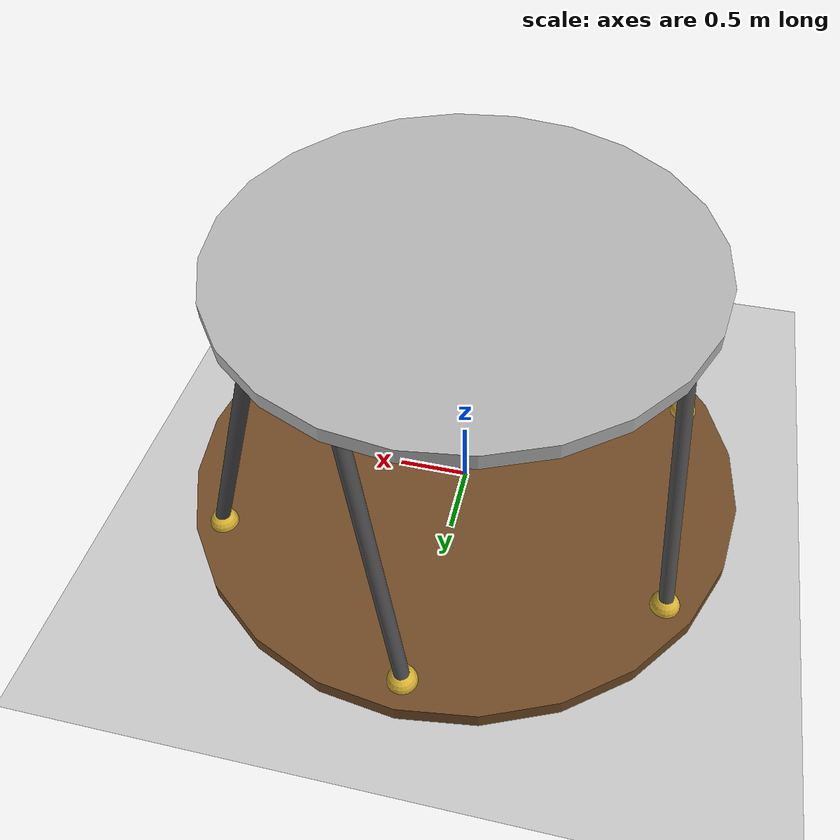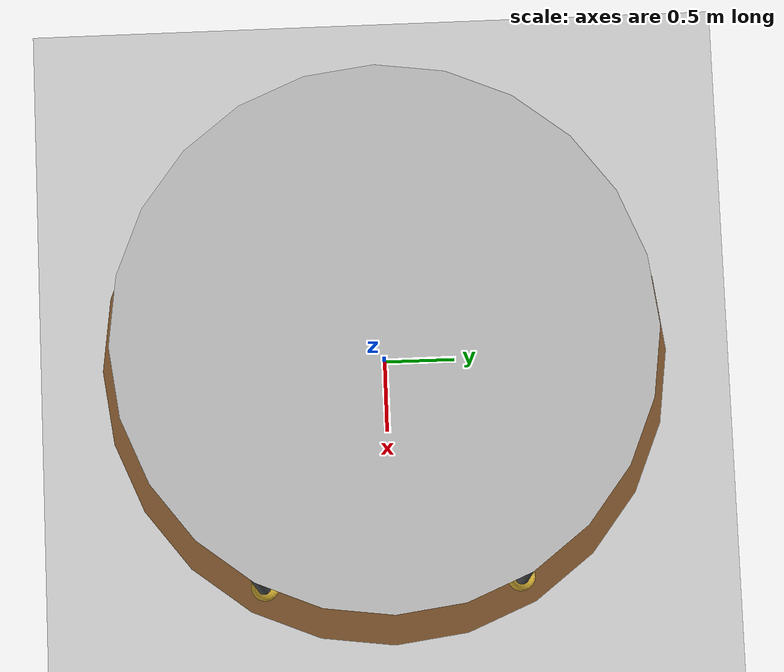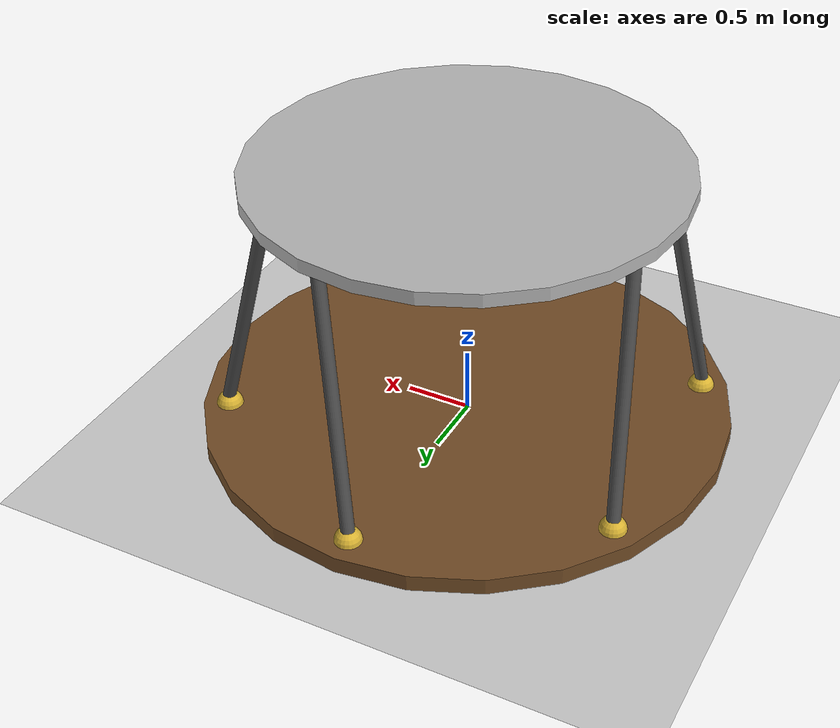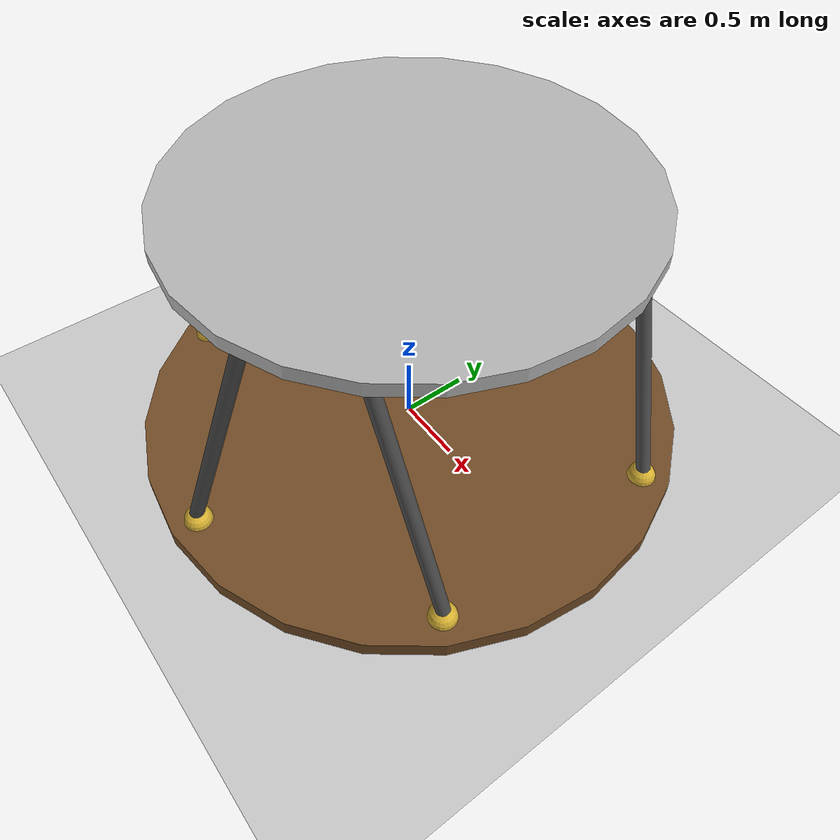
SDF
<?xml version="1.0"?>
<sdf version="1.5">

	<world name="default">

        <!-- System plugins are loaded via gazebo_ros gzserver.launch.py; no world plugins here -->

		<include>
			<uri>model://ground_plane</uri>
		</include>

		<include>
			<uri>model://sun</uri>
		</include>

		<!-- Spawn the Stewart platform directly via world include -->
		<include>
			<uri>model://stewart</uri>
			<name>stewart</name>
			<pose>0 0 0 0 0 0</pose>
		</include>

		<scene>
			<shadows>0</shadows>
		</scene>

	</world>

</sdf>

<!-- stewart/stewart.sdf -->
<sdf version="1.5">
	<model name="stewart">
		<plugin name="joint_controller" filename="libstewart_joint_controller.so">
			<ros>
				<namespace>stewart</namespace>
			</ros>
			<gazebo_controller_init>
				<propor>64.0</propor>
				<integr>35.0</integr>
				<deriv>0.5</deriv>
				<init_legs_length>0.3</init_legs_length>
			</gazebo_controller_init>
		</plugin>
		<joint name="piston1_prismatic_joint" type="prismatic">
			<parent>piston1_cylinder_link</parent>
			<child>piston1_shaft_link</child>
			<pose>0 0 0 0 0 0</pose>
			<axis>
				<xyz>0 0 1</xyz>
				<limit>
					<lower>0.1</lower>
					<upper>1.458798797151677</upper>
					<velocity>1</velocity>
					<effort>500</effort>
				</limit>
				<dynamics>
					<damping>3</damping>
				</dynamics>
			</axis>
		</joint>
		<joint name="piston2_prismatic_joint" type="prismatic">
			<parent>piston2_cylinder_link</parent>
			<child>piston2_shaft_link</child>
			<pose>0 0 0 0 0 0</pose>
			<axis>
				<xyz>0 0 1</xyz>
				<limit>
					<lower>0.1</lower>
					<upper>1.458798797151677</upper>
					<velocity>1</velocity>
					<effort>500</effort>
				</limit>
				<dynamics>
					<damping>3</damping>
				</dynamics>
			</axis>
		</joint>
		<joint name="piston3_prismatic_joint" type="prismatic">
			<parent>piston3_cylinder_link</parent>
			<child>piston3_shaft_link</child>
			<pose>0 0 0 0 0 0</pose>
			<axis>
				<xyz>0 0 1</xyz>
				<limit>
					<lower>0.1</lower>
					<upper>1.458798797151677</upper>
					<velocity>1</velocity>
					<effort>500</effort>
				</limit>
				<dynamics>
					<damping>3</damping>
				</dynamics>
			</axis>
		</joint>
		<joint name="piston4_prismatic_joint" type="prismatic">
			<parent>piston4_cylinder_link</parent>
			<child>piston4_shaft_link</child>
			<pose>0 0 0 0 0 0</pose>
			<axis>
				<xyz>0 0 1</xyz>
				<limit>
					<lower>0.1</lower>
					<upper>1.458798797151677</upper>
					<velocity>1</velocity>
					<effort>500</effort>
				</limit>
				<dynamics>
					<damping>3</damping>
				</dynamics>
			</axis>
		</joint>
		<joint name="piston5_prismatic_joint" type="prismatic">
			<parent>piston5_cylinder_link</parent>
			<child>piston5_shaft_link</child>
			<pose>0 0 0 0 0 0</pose>
			<axis>
				<xyz>0 0 1</xyz>
				<limit>
					<lower>0.1</lower>
					<upper>1.458798797151677</upper>
					<velocity>1</velocity>
					<effort>500</effort>
				</limit>
				<dynamics>
					<damping>3</damping>
				</dynamics>
			</axis>
		</joint>
		<joint name="piston6_prismatic_joint" type="prismatic">
			<parent>piston6_cylinder_link</parent>
			<child>piston6_shaft_link</child>
			<pose>0 0 0 0 0 0</pose>
			<axis>
				<xyz>0 0 1</xyz>
				<limit>
					<lower>0.1</lower>
					<upper>1.458798797151677</upper>
					<velocity>1</velocity>
					<effort>500</effort>
				</limit>
				<dynamics>
					<damping>3</damping>
				</dynamics>
			</axis>
		</joint>
		<joint name="bottom_ball1_joint" type="revolute">
			<parent>base_link</parent>
			<child>bottom_ball1_link</child>
			<pose>0 0 0 0 0 0</pose>
			<axis>
				<xyz>0 1 0</xyz>
				<limit>
					<lower>-0.5235987755982988</lower>
					<upper>0.5235987755982988</upper>
					<velocity>1</velocity>
					<effort/>
				</limit>
				<dynamics>
					<damping/>
				</dynamics>
			</axis>
		</joint>
		<joint name="bottom_ball2_joint" type="revolute">
			<parent>base_link</parent>
			<child>bottom_ball2_link</child>
			<pose>0 0 0 0 0 0</pose>
			<axis>
				<xyz>0 1 0</xyz>
				<limit>
					<lower>-0.5235987755982988</lower>
					<upper>0.5235987755982988</upper>
					<velocity>1</velocity>
					<effort/>
				</limit>
				<dynamics>
					<damping/>
				</dynamics>
			</axis>
		</joint>
		<joint name="bottom_ball3_joint" type="revolute">
			<parent>base_link</parent>
			<child>bottom_ball3_link</child>
			<pose>0 0 0 0 0 0</pose>
			<axis>
				<xyz>0 1 0</xyz>
				<limit>
					<lower>-0.5235987755982988</lower>
					<upper>0.5235987755982988</upper>
					<velocity>1</velocity>
					<effort/>
				</limit>
				<dynamics>
					<damping/>
				</dynamics>
			</axis>
		</joint>
		<joint name="bottom_ball4_joint" type="revolute">
			<parent>base_link</parent>
			<child>bottom_ball4_link</child>
			<pose>0 0 0 0 0 0</pose>
			<axis>
				<xyz>0 1 0</xyz>
				<limit>
					<lower>-0.5235987755982988</lower>
					<upper>0.5235987755982988</upper>
					<velocity>1</velocity>
					<effort/>
				</limit>
				<dynamics>
					<damping/>
				</dynamics>
			</axis>
		</joint>
		<joint name="bottom_ball5_joint" type="revolute">
			<parent>base_link</parent>
			<child>bottom_ball5_link</child>
			<pose>0 0 0 0 0 0</pose>
			<axis>
				<xyz>0 1 0</xyz>
				<limit>
					<lower>-0.5235987755982988</lower>
					<upper>0.5235987755982988</upper>
					<velocity>1</velocity>
					<effort/>
				</limit>
				<dynamics>
					<damping/>
				</dynamics>
			</axis>
		</joint>
		<joint name="bottom_ball6_joint" type="revolute">
			<parent>base_link</parent>
			<child>bottom_ball6_link</child>
			<pose>0 0 0 0 0 0</pose>
			<axis>
				<xyz>0 1 0</xyz>
				<limit>
					<lower>-0.5235987755982988</lower>
					<upper>0.5235987755982988</upper>
					<velocity>1</velocity>
					<effort/>
				</limit>
				<dynamics>
					<damping/>
				</dynamics>
			</axis>
		</joint>
		<joint name="piston1_bottom_pitch_joint" type="revolute2">
			<parent>bottom_ball1_link</parent>
			<child>piston1_cylinder_link</child>
			<pose>0 0 -0.911749248219798 0 0 0</pose>
			<axis>
				<xyz>1 0 0</xyz>
				<limit>
					<lower>-0.5235987755982988</lower>
					<upper>0.5235987755982988</upper>
					<velocity/>
					<effort/>
				</limit>
				<dynamics>
					<damping/>
				</dynamics>
			</axis>
		</joint>
		<joint name="piston2_bottom_pitch_joint" type="revolute2">
			<parent>bottom_ball2_link</parent>
			<child>piston2_cylinder_link</child>
			<pose>0 0 -0.911749248219798 0 0 0</pose>
			<axis>
				<xyz>1 0 0</xyz>
				<limit>
					<lower>-0.5235987755982988</lower>
					<upper>0.5235987755982988</upper>
					<velocity/>
					<effort/>
				</limit>
				<dynamics>
					<damping/>
				</dynamics>
			</axis>
		</joint>
		<joint name="piston3_bottom_pitch_joint" type="revolute2">
			<parent>bottom_ball3_link</parent>
			<child>piston3_cylinder_link</child>
			<pose>0 0 -0.911749248219798 0 0 0</pose>
			<axis>
				<xyz>1 0 0</xyz>
				<limit>
					<lower>-0.5235987755982988</lower>
					<upper>0.5235987755982988</upper>
					<velocity/>
					<effort/>
				</limit>
				<dynamics>
					<damping/>
				</dynamics>
			</axis>
		</joint>
		<joint name="piston4_bottom_pitch_joint" type="revolute2">
			<parent>bottom_ball4_link</parent>
			<child>piston4_cylinder_link</child>
			<pose>0 0 -0.911749248219798 0 0 0</pose>
			<axis>
				<xyz>1 0 0</xyz>
				<limit>
					<lower>-0.5235987755982988</lower>
					<upper>0.5235987755982988</upper>
					<velocity/>
					<effort/>
				</limit>
				<dynamics>
					<damping/>
				</dynamics>
			</axis>
		</joint>
		<joint name="piston5_bottom_pitch_joint" type="revolute2">
			<parent>bottom_ball5_link</parent>
			<child>piston5_cylinder_link</child>
			<pose>0 0 -0.911749248219798 0 0 0</pose>
			<axis>
				<xyz>1 0 0</xyz>
				<limit>
					<lower>-0.5235987755982988</lower>
					<upper>0.5235987755982988</upper>
					<velocity/>
					<effort/>
				</limit>
				<dynamics>
					<damping/>
				</dynamics>
			</axis>
		</joint>
		<joint name="piston6_bottom_pitch_joint" type="revolute2">
			<parent>bottom_ball6_link</parent>
			<child>piston6_cylinder_link</child>
			<pose>0 0 -0.911749248219798 0 0 0</pose>
			<axis>
				<xyz>1 0 0</xyz>
				<limit>
					<lower>-0.5235987755982988</lower>
					<upper>0.5235987755982988</upper>
					<velocity/>
					<effort/>
				</limit>
				<dynamics>
					<damping/>
				</dynamics>
			</axis>
		</joint>
		<joint name="top_ball1_joint" type="revolute">
			<parent>platform_link</parent>
			<child>top_ball1_link</child>
			<pose>0 0 0 0 0 0</pose>
			<axis>
				<xyz>0 1 0</xyz>
				<limit>
					<lower>-0.5235987755982988</lower>
					<upper>0.5235987755982988</upper>
					<velocity>1</velocity>
					<effort/>
				</limit>
				<dynamics>
					<damping/>
				</dynamics>
			</axis>
			<axis2>
				<xyz>0 0 1</xyz>
				<limit>
					<lower>-0.5235987755982988</lower>
					<upper>0.5235987755982988</upper>
					<velocity>1</velocity>
					<effort/>
				</limit>
				<dynamics>
					<damping/>
				</dynamics>
			</axis2>
		</joint>
		<joint name="top_ball2_joint" type="revolute">
			<parent>platform_link</parent>
			<child>top_ball2_link</child>
			<pose>0 0 0 0 0 0</pose>
			<axis>
				<xyz>0 1 0</xyz>
				<limit>
					<lower>-0.5235987755982988</lower>
					<upper>0.5235987755982988</upper>
					<velocity>1</velocity>
					<effort/>
				</limit>
				<dynamics>
					<damping/>
				</dynamics>
			</axis>
			<axis2>
				<xyz>0 0 1</xyz>
				<limit>
					<lower>-0.5235987755982988</lower>
					<upper>0.5235987755982988</upper>
					<velocity>1</velocity>
					<effort/>
				</limit>
				<dynamics>
					<damping/>
				</dynamics>
			</axis2>
		</joint>
		<joint name="top_ball3_joint" type="revolute">
			<parent>platform_link</parent>
			<child>top_ball3_link</child>
			<pose>0 0 0 0 0 0</pose>
			<axis>
				<xyz>0 1 0</xyz>
				<limit>
					<lower>-0.5235987755982988</lower>
					<upper>0.5235987755982988</upper>
					<velocity>1</velocity>
					<effort/>
				</limit>
				<dynamics>
					<damping/>
				</dynamics>
			</axis>
			<axis2>
				<xyz>0 0 1</xyz>
				<limit>
					<lower>-0.5235987755982988</lower>
					<upper>0.5235987755982988</upper>
					<velocity>1</velocity>
					<effort/>
				</limit>
				<dynamics>
					<damping/>
				</dynamics>
			</axis2>
		</joint>
		<joint name="top_ball4_joint" type="revolute">
			<parent>platform_link</parent>
			<child>top_ball4_link</child>
			<pose>0 0 0 0 0 0</pose>
			<axis>
				<xyz>0 1 0</xyz>
				<limit>
					<lower>-0.5235987755982988</lower>
					<upper>0.5235987755982988</upper>
					<velocity>1</velocity>
					<effort/>
				</limit>
				<dynamics>
					<damping/>
				</dynamics>
			</axis>
			<axis2>
				<xyz>0 0 1</xyz>
				<limit>
					<lower>-0.5235987755982988</lower>
					<upper>0.5235987755982988</upper>
					<velocity>1</velocity>
					<effort/>
				</limit>
				<dynamics>
					<damping/>
				</dynamics>
			</axis2>
		</joint>
		<joint name="top_ball5_joint" type="revolute">
			<parent>platform_link</parent>
			<child>top_ball5_link</child>
			<pose>0 0 0 0 0 0</pose>
			<axis>
				<xyz>0 1 0</xyz>
				<limit>
					<lower>-0.5235987755982988</lower>
					<upper>0.5235987755982988</upper>
					<velocity>1</velocity>
					<effort/>
				</limit>
				<dynamics>
					<damping/>
				</dynamics>
			</axis>
			<axis2>
				<xyz>0 0 1</xyz>
				<limit>
					<lower>-0.5235987755982988</lower>
					<upper>0.5235987755982988</upper>
					<velocity>1</velocity>
					<effort/>
				</limit>
				<dynamics>
					<damping/>
				</dynamics>
			</axis2>
		</joint>
		<joint name="top_ball6_joint" type="revolute">
			<parent>platform_link</parent>
			<child>top_ball6_link</child>
			<pose>0 0 0 0 0 0</pose>
			<axis>
				<xyz>0 1 0</xyz>
				<limit>
					<lower>-0.5235987755982988</lower>
					<upper>0.5235987755982988</upper>
					<velocity>1</velocity>
					<effort/>
				</limit>
				<dynamics>
					<damping/>
				</dynamics>
			</axis>
			<axis2>
				<xyz>0 0 1</xyz>
				<limit>
					<lower>-0.5235987755982988</lower>
					<upper>0.5235987755982988</upper>
					<velocity>1</velocity>
					<effort/>
				</limit>
				<dynamics>
					<damping/>
				</dynamics>
			</axis2>
		</joint>
		<joint name="piston1_top_pitch_joint" type="universal">
			<parent>top_ball1_link</parent>
			<child>piston1_shaft_link</child>
			<pose>0 0 0.911749248219798 0 0 0</pose>
			<axis>
				<xyz>1 0 0</xyz>
				<limit>
					<lower>-0.5235987755982988</lower>
					<upper>0.5235987755982988</upper>
					<velocity/>
					<effort/>
				</limit>
				<dynamics>
					<damping/>
				</dynamics>
			</axis>
		</joint>
		<joint name="piston2_top_pitch_joint" type="universal">
			<parent>top_ball2_link</parent>
			<child>piston2_shaft_link</child>
			<pose>0 0 0.911749248219798 0 0 0</pose>
			<axis>
				<xyz>1 0 0</xyz>
				<limit>
					<lower>-0.5235987755982988</lower>
					<upper>0.5235987755982988</upper>
					<velocity/>
					<effort/>
				</limit>
				<dynamics>
					<damping/>
				</dynamics>
			</axis>
		</joint>
		<joint name="piston3_top_pitch_joint" type="universal">
			<parent>top_ball3_link</parent>
			<child>piston3_shaft_link</child>
			<pose>0 0 0.911749248219798 0 0 0</pose>
			<axis>
				<xyz>1 0 0</xyz>
				<limit>
					<lower>-0.5235987755982988</lower>
					<upper>0.5235987755982988</upper>
					<velocity/>
					<effort/>
				</limit>
				<dynamics>
					<damping/>
				</dynamics>
			</axis>
		</joint>
		<joint name="piston4_top_pitch_joint" type="universal">
			<parent>top_ball4_link</parent>
			<child>piston4_shaft_link</child>
			<pose>0 0 0.911749248219798 0 0 0</pose>
			<axis>
				<xyz>1 0 0</xyz>
				<limit>
					<lower>-0.5235987755982988</lower>
					<upper>0.5235987755982988</upper>
					<velocity/>
					<effort/>
				</limit>
				<dynamics>
					<damping/>
				</dynamics>
			</axis>
		</joint>
		<joint name="piston5_top_pitch_joint" type="universal">
			<parent>top_ball5_link</parent>
			<child>piston5_shaft_link</child>
			<pose>0 0 0.911749248219798 0 0 0</pose>
			<axis>
				<xyz>1 0 0</xyz>
				<limit>
					<lower>-0.5235987755982988</lower>
					<upper>0.5235987755982988</upper>
					<velocity/>
					<effort/>
				</limit>
				<dynamics>
					<damping/>
				</dynamics>
			</axis>
		</joint>
		<joint name="piston6_top_pitch_joint" type="universal">
			<parent>top_ball6_link</parent>
			<child>piston6_shaft_link</child>
			<pose>0 0 0.911749248219798 0 0 0</pose>
			<axis>
				<xyz>1 0 0</xyz>
				<limit>
					<lower>-0.5235987755982988</lower>
					<upper>0.5235987755982988</upper>
					<velocity/>
					<effort/>
				</limit>
				<dynamics>
					<damping/>
				</dynamics>
			</axis>
		</joint>
		<link name="base_link">
			<pose>0 0 0.0625 0 0 0</pose>
			<inertial>
				<mass>1000.0</mass>
				<inertia>
					<ixx>1001.3020833333333</ixx>
					<ixy>0</ixy>
					<ixz>0</ixz>
					<iyy>1001.3020833333333</iyy>
					<iyz>0</iyz>
					<izz>2000.0</izz>
				</inertia>
			</inertial>
			<visual name="base_link_visual">
				<geometry>
					<cylinder>
						<radius>2.0</radius>
						<length>0.125</length>
					</cylinder>
				</geometry>
				<material>
					<script>
						<uri>file://media/materials/scripts/gazebo.material</uri>
						<name>Gazebo/Trunk</name>
					</script>
				</material>
			</visual>
			<collision name="base_link_collision">
				<geometry>
					<cylinder>
						<radius>2.0</radius>
						<length>0.125</length>
					</cylinder>
				</geometry>
			</collision>
		</link>
		<link name="platform_link">
			<pose>0 0 2.0625 0 0 0</pose>
			<inertial>
				<mass>10</mass>
				<inertia>
					<ixx>6.408333333333334</ixx>
					<ixy>0</ixy>
					<ixz>0</ixz>
					<iyy>6.408333333333334</iyy>
					<iyz>0</iyz>
					<izz>12.800000000000002</izz>
				</inertia>
			</inertial>
			<visual name="platform_link_visual">
				<geometry>
					<cylinder>
						<radius>1.6</radius>
						<length>0.1</length>
					</cylinder>
				</geometry>
				<material>
					<script>
						<uri>file://media/materials/scripts/gazebo.material</uri>
						<name>Gazebo/Footway</name>
					</script>
				</material>
			</visual>
			<collision name="platform_link_collision">
				<geometry>
					<cylinder>
						<radius>1.6</radius>
						<length>0.1</length>
					</cylinder>
				</geometry>
			</collision>
		</link>
		<link name="bottom_ball1_link">
			<pose>1.5588457268119897 0.8999999999999999 0.125 0 0 0.5235987755982988</pose>
			<inertial>
				<mass>0.01</mass>
				<inertia>
					<ixx>4.000000000000001e-05</ixx>
					<ixy>0</ixy>
					<ixz>0</ixz>
					<iyy>4.000000000000001e-05</iyy>
					<iyz>0</iyz>
					<izz>4.000000000000001e-05</izz>
				</inertia>
			</inertial>
			<visual name="bottom_ball1_link_visual">
				<geometry>
					<sphere>
						<radius>0.1</radius>
					</sphere>
				</geometry>
				<material>
					<script>
						<uri>file://media/materials/scripts/gazebo.material</uri>
						<name>Gazebo/Gold</name>
					</script>
				</material>
			</visual>
			<collision name="bottom_ball1_link_collision">
				<geometry>
					<sphere>
						<radius>0.1</radius>
					</sphere>
				</geometry>
			</collision>
		</link>
		<link name="bottom_ball2_link">
			<pose>1.1021821192326179e-16 1.8 0.125 0 0 1.5707963267948966</pose>
			<inertial>
				<mass>0.01</mass>
				<inertia>
					<ixx>4.000000000000001e-05</ixx>
					<ixy>0</ixy>
					<ixz>0</ixz>
					<iyy>4.000000000000001e-05</iyy>
					<iyz>0</iyz>
					<izz>4.000000000000001e-05</izz>
				</inertia>
			</inertial>
			<visual name="bottom_ball2_link_visual">
				<geometry>
					<sphere>
						<radius>0.1</radius>
					</sphere>
				</geometry>
				<material>
					<script>
						<uri>file://media/materials/scripts/gazebo.material</uri>
						<name>Gazebo/Gold</name>
					</script>
				</material>
			</visual>
			<collision name="bottom_ball2_link_collision">
				<geometry>
					<sphere>
						<radius>0.1</radius>
					</sphere>
				</geometry>
			</collision>
		</link>
		<link name="bottom_ball3_link">
			<pose>-1.5588457268119897 0.8999999999999999 0.125 0 0 2.6179938779914944</pose>
			<inertial>
				<mass>0.01</mass>
				<inertia>
					<ixx>4.000000000000001e-05</ixx>
					<ixy>0</ixy>
					<ixz>0</ixz>
					<iyy>4.000000000000001e-05</iyy>
					<iyz>0</iyz>
					<izz>4.000000000000001e-05</izz>
				</inertia>
			</inertial>
			<visual name="bottom_ball3_link_visual">
				<geometry>
					<sphere>
						<radius>0.1</radius>
					</sphere>
				</geometry>
				<material>
					<script>
						<uri>file://media/materials/scripts/gazebo.material</uri>
						<name>Gazebo/Gold</name>
					</script>
				</material>
			</visual>
			<collision name="bottom_ball3_link_collision">
				<geometry>
					<sphere>
						<radius>0.1</radius>
					</sphere>
				</geometry>
			</collision>
		</link>
		<link name="bottom_ball4_link">
			<pose>-1.5588457268119895 -0.9000000000000002 0.125 0 0 -2.6179938779914944</pose>
			<inertial>
				<mass>0.01</mass>
				<inertia>
					<ixx>4.000000000000001e-05</ixx>
					<ixy>0</ixy>
					<ixz>0</ixz>
					<iyy>4.000000000000001e-05</iyy>
					<iyz>0</iyz>
					<izz>4.000000000000001e-05</izz>
				</inertia>
			</inertial>
			<visual name="bottom_ball4_link_visual">
				<geometry>
					<sphere>
						<radius>0.1</radius>
					</sphere>
				</geometry>
				<material>
					<script>
						<uri>file://media/materials/scripts/gazebo.material</uri>
						<name>Gazebo/Gold</name>
					</script>
				</material>
			</visual>
			<collision name="bottom_ball4_link_collision">
				<geometry>
					<sphere>
						<radius>0.1</radius>
					</sphere>
				</geometry>
			</collision>
		</link>
		<link name="bottom_ball5_link">
			<pose>-3.3065463576978537e-16 -1.8 0.125 0 0 -1.5707963267948968</pose>
			<inertial>
				<mass>0.01</mass>
				<inertia>
					<ixx>4.000000000000001e-05</ixx>
					<ixy>0</ixy>
					<ixz>0</ixz>
					<iyy>4.000000000000001e-05</iyy>
					<iyz>0</iyz>
					<izz>4.000000000000001e-05</izz>
				</inertia>
			</inertial>
			<visual name="bottom_ball5_link_visual">
				<geometry>
					<sphere>
						<radius>0.1</radius>
					</sphere>
				</geometry>
				<material>
					<script>
						<uri>file://media/materials/scripts/gazebo.material</uri>
						<name>Gazebo/Gold</name>
					</script>
				</material>
			</visual>
			<collision name="bottom_ball5_link_collision">
				<geometry>
					<sphere>
						<radius>0.1</radius>
					</sphere>
				</geometry>
			</collision>
		</link>
		<link name="bottom_ball6_link">
			<pose>1.558845726811989 -0.9000000000000008 0.125 0 0 -0.5235987755982994</pose>
			<inertial>
				<mass>0.01</mass>
				<inertia>
					<ixx>4.000000000000001e-05</ixx>
					<ixy>0</ixy>
					<ixz>0</ixz>
					<iyy>4.000000000000001e-05</iyy>
					<iyz>0</iyz>
					<izz>4.000000000000001e-05</izz>
				</inertia>
			</inertial>
			<visual name="bottom_ball6_link_visual">
				<geometry>
					<sphere>
						<radius>0.1</radius>
					</sphere>
				</geometry>
				<material>
					<script>
						<uri>file://media/materials/scripts/gazebo.material</uri>
						<name>Gazebo/Gold</name>
					</script>
				</material>
			</visual>
			<collision name="bottom_ball6_link_collision">
				<geometry>
					<sphere>
						<radius>0.1</radius>
					</sphere>
				</geometry>
			</collision>
		</link>
		<link name="top_ball1_link">
			<pose>1.0182337649086284 1.0182337649086284 1.9625 0 0 0.7853981633974483</pose>
			<inertial>
				<mass>0.01</mass>
				<inertia>
					<ixx>1.0000000000000003e-05</ixx>
					<ixy>0</ixy>
					<ixz>0</ixz>
					<iyy>1.0000000000000003e-05</iyy>
					<iyz>0</iyz>
					<izz>1.0000000000000003e-05</izz>
				</inertia>
			</inertial>
			<visual name="top_ball1_link_visual">
				<geometry>
					<sphere>
						<radius>0.05</radius>
					</sphere>
				</geometry>
				<material>
					<script>
						<uri>file://media/materials/scripts/gazebo.material</uri>
						<name>Gazebo/White</name>
					</script>
				</material>
			</visual>
			<collision name="top_ball1_link_collision">
				<geometry>
					<sphere>
						<radius>0.05</radius>
					</sphere>
				</geometry>
			</collision>
		</link>
		<link name="top_ball2_link">
			<pose>0.3726994249476302 1.3909331898562582 1.9625 0 0 1.308996938995747</pose>
			<inertial>
				<mass>0.01</mass>
				<inertia>
					<ixx>1.0000000000000003e-05</ixx>
					<ixy>0</ixy>
					<ixz>0</ixz>
					<iyy>1.0000000000000003e-05</iyy>
					<iyz>0</iyz>
					<izz>1.0000000000000003e-05</izz>
				</inertia>
			</inertial>
			<visual name="top_ball2_link_visual">
				<geometry>
					<sphere>
						<radius>0.05</radius>
					</sphere>
				</geometry>
				<material>
					<script>
						<uri>file://media/materials/scripts/gazebo.material</uri>
						<name>Gazebo/White</name>
					</script>
				</material>
			</visual>
			<collision name="top_ball2_link_collision">
				<geometry>
					<sphere>
						<radius>0.05</radius>
					</sphere>
				</geometry>
			</collision>
		</link>
		<link name="top_ball3_link">
			<pose>-1.3909331898562582 0.37269942494763025 1.9625 0 0 2.8797932657906435</pose>
			<inertial>
				<mass>0.01</mass>
				<inertia>
					<ixx>1.0000000000000003e-05</ixx>
					<ixy>0</ixy>
					<ixz>0</ixz>
					<iyy>1.0000000000000003e-05</iyy>
					<iyz>0</iyz>
					<izz>1.0000000000000003e-05</izz>
				</inertia>
			</inertial>
			<visual name="top_ball3_link_visual">
				<geometry>
					<sphere>
						<radius>0.05</radius>
					</sphere>
				</geometry>
				<material>
					<script>
						<uri>file://media/materials/scripts/gazebo.material</uri>
						<name>Gazebo/White</name>
					</script>
				</material>
			</visual>
			<collision name="top_ball3_link_collision">
				<geometry>
					<sphere>
						<radius>0.05</radius>
					</sphere>
				</geometry>
			</collision>
		</link>
		<link name="top_ball4_link">
			<pose>-1.3909331898562585 -0.3726994249476293 1.9625 0 0 -2.8797932657906444</pose>
			<inertial>
				<mass>0.01</mass>
				<inertia>
					<ixx>1.0000000000000003e-05</ixx>
					<ixy>0</ixy>
					<ixz>0</ixz>
					<iyy>1.0000000000000003e-05</iyy>
					<iyz>0</iyz>
					<izz>1.0000000000000003e-05</izz>
				</inertia>
			</inertial>
			<visual name="top_ball4_link_visual">
				<geometry>
					<sphere>
						<radius>0.05</radius>
					</sphere>
				</geometry>
				<material>
					<script>
						<uri>file://media/materials/scripts/gazebo.material</uri>
						<name>Gazebo/White</name>
					</script>
				</material>
			</visual>
			<collision name="top_ball4_link_collision">
				<geometry>
					<sphere>
						<radius>0.05</radius>
					</sphere>
				</geometry>
			</collision>
		</link>
		<link name="top_ball5_link">
			<pose>0.3726994249476304 -1.3909331898562582 1.9625 0 0 -1.3089969389957468</pose>
			<inertial>
				<mass>0.01</mass>
				<inertia>
					<ixx>1.0000000000000003e-05</ixx>
					<ixy>0</ixy>
					<ixz>0</ixz>
					<iyy>1.0000000000000003e-05</iyy>
					<iyz>0</iyz>
					<izz>1.0000000000000003e-05</izz>
				</inertia>
			</inertial>
			<visual name="top_ball5_link_visual">
				<geometry>
					<sphere>
						<radius>0.05</radius>
					</sphere>
				</geometry>
				<material>
					<script>
						<uri>file://media/materials/scripts/gazebo.material</uri>
						<name>Gazebo/White</name>
					</script>
				</material>
			</visual>
			<collision name="top_ball5_link_collision">
				<geometry>
					<sphere>
						<radius>0.05</radius>
					</sphere>
				</geometry>
			</collision>
		</link>
		<link name="top_ball6_link">
			<pose>1.018233764908629 -1.0182337649086277 1.9625 0 0 -0.7853981633974476</pose>
			<inertial>
				<mass>0.01</mass>
				<inertia>
					<ixx>1.0000000000000003e-05</ixx>
					<ixy>0</ixy>
					<ixz>0</ixz>
					<iyy>1.0000000000000003e-05</iyy>
					<iyz>0</iyz>
					<izz>1.0000000000000003e-05</izz>
				</inertia>
			</inertial>
			<visual name="top_ball6_link_visual">
				<geometry>
					<sphere>
						<radius>0.05</radius>
					</sphere>
				</geometry>
				<material>
					<script>
						<uri>file://media/materials/scripts/gazebo.material</uri>
						<name>Gazebo/White</name>
					</script>
				</material>
			</visual>
			<collision name="top_ball6_link_collision">
				<geometry>
					<sphere>
						<radius>0.05</radius>
					</sphere>
				</geometry>
			</collision>
		</link>
		<link name="piston1_cylinder_link">
			<pose>1.2885397458603092 0.9591168824543141 1.0687499999999999 0 0.3083397370669141 2.9262792660527293</pose>
			<inertial>
				<mass>0.1</mass>
				<inertia>
					<ixx>0.027772056387645558</ixx>
					<ixy>0</ixy>
					<ixz>0</ixz>
					<iyy>0.027772056387645558</iyy>
					<iyz>0</iyz>
					<izz>0.00012500000000000003</izz>
				</inertia>
			</inertial>
			<visual name="piston1_cylinder_link_visual">
				<geometry>
					<cylinder>
						<radius>0.05</radius>
						<length>1.823498496439596</length>
					</cylinder>
				</geometry>
				<material>
					<script>
						<uri>file://media/materials/scripts/gazebo.material</uri>
						<name>Gazebo/DarkGrey</name>
					</script>
				</material>
			</visual>
			<collision name="piston1_cylinder_link_collision">
				<geometry>
					<cylinder>
						<radius>0.05</radius>
						<length>1.823498496439596</length>
					</cylinder>
				</geometry>
			</collision>
		</link>
		<link name="piston2_cylinder_link">
			<pose>0.18634971247381515 1.595466594928129 1.0687499999999999 0 0.3083397370669141 -0.8318841636595334</pose>
			<inertial>
				<mass>0.1</mass>
				<inertia>
					<ixx>0.027772056387645558</ixx>
					<ixy>0</ixy>
					<ixz>0</ixz>
					<iyy>0.027772056387645558</iyy>
					<iyz>0</iyz>
					<izz>0.00012500000000000003</izz>
				</inertia>
			</inertial>
			<visual name="piston2_cylinder_link_visual">
				<geometry>
					<cylinder>
						<radius>0.05</radius>
						<length>1.823498496439596</length>
					</cylinder>
				</geometry>
				<material>
					<script>
						<uri>file://media/materials/scripts/gazebo.material</uri>
						<name>Gazebo/DarkGrey</name>
					</script>
				</material>
			</visual>
			<collision name="piston2_cylinder_link_collision">
				<geometry>
					<cylinder>
						<radius>0.05</radius>
						<length>1.823498496439596</length>
					</cylinder>
				</geometry>
			</collision>
		</link>
		<link name="piston3_cylinder_link">
			<pose>-1.474889458334124 0.6363497124738151 1.0687499999999999 0 0.30833973706691387 -1.2625109387336613</pose>
			<inertial>
				<mass>0.1</mass>
				<inertia>
					<ixx>0.027772056387645558</ixx>
					<ixy>0</ixy>
					<ixz>0</ixz>
					<iyy>0.027772056387645558</iyy>
					<iyz>0</iyz>
					<izz>0.00012500000000000003</izz>
				</inertia>
			</inertial>
			<visual name="piston3_cylinder_link_visual">
				<geometry>
					<cylinder>
						<radius>0.05</radius>
						<length>1.823498496439596</length>
					</cylinder>
				</geometry>
				<material>
					<script>
						<uri>file://media/materials/scripts/gazebo.material</uri>
						<name>Gazebo/DarkGrey</name>
					</script>
				</material>
			</visual>
			<collision name="piston3_cylinder_link_collision">
				<geometry>
					<cylinder>
						<radius>0.05</radius>
						<length>1.823498496439596</length>
					</cylinder>
				</geometry>
			</collision>
		</link>
		<link name="piston4_cylinder_link">
			<pose>-1.474889458334124 -0.6363497124738148 1.0687499999999999 0 0.3083397370669143 1.2625109387336626</pose>
			<inertial>
				<mass>0.1</mass>
				<inertia>
					<ixx>0.027772056387645558</ixx>
					<ixy>0</ixy>
					<ixz>0</ixz>
					<iyy>0.027772056387645558</iyy>
					<iyz>0</iyz>
					<izz>0.00012500000000000003</izz>
				</inertia>
			</inertial>
			<visual name="piston4_cylinder_link_visual">
				<geometry>
					<cylinder>
						<radius>0.05</radius>
						<length>1.823498496439596</length>
					</cylinder>
				</geometry>
				<material>
					<script>
						<uri>file://media/materials/scripts/gazebo.material</uri>
						<name>Gazebo/DarkGrey</name>
					</script>
				</material>
			</visual>
			<collision name="piston4_cylinder_link_collision">
				<geometry>
					<cylinder>
						<radius>0.05</radius>
						<length>1.823498496439596</length>
					</cylinder>
				</geometry>
			</collision>
		</link>
		<link name="piston5_cylinder_link">
			<pose>0.18634971247381504 -1.595466594928129 1.0687499999999999 0 0.3083397370669143 0.8318841636595325</pose>
			<inertial>
				<mass>0.1</mass>
				<inertia>
					<ixx>0.027772056387645558</ixx>
					<ixy>0</ixy>
					<ixz>0</ixz>
					<iyy>0.027772056387645558</iyy>
					<iyz>0</iyz>
					<izz>0.00012500000000000003</izz>
				</inertia>
			</inertial>
			<visual name="piston5_cylinder_link_visual">
				<geometry>
					<cylinder>
						<radius>0.05</radius>
						<length>1.823498496439596</length>
					</cylinder>
				</geometry>
				<material>
					<script>
						<uri>file://media/materials/scripts/gazebo.material</uri>
						<name>Gazebo/DarkGrey</name>
					</script>
				</material>
			</visual>
			<collision name="piston5_cylinder_link_collision">
				<geometry>
					<cylinder>
						<radius>0.05</radius>
						<length>1.823498496439596</length>
					</cylinder>
				</geometry>
			</collision>
		</link>
		<link name="piston6_cylinder_link">
			<pose>1.2885397458603092 -0.9591168824543143 1.0687499999999999 0 0.3083397370669134 -2.9262792660527315</pose>
			<inertial>
				<mass>0.1</mass>
				<inertia>
					<ixx>0.027772056387645558</ixx>
					<ixy>0</ixy>
					<ixz>0</ixz>
					<iyy>0.027772056387645558</iyy>
					<iyz>0</iyz>
					<izz>0.00012500000000000003</izz>
				</inertia>
			</inertial>
			<visual name="piston6_cylinder_link_visual">
				<geometry>
					<cylinder>
						<radius>0.05</radius>
						<length>1.823498496439596</length>
					</cylinder>
				</geometry>
				<material>
					<script>
						<uri>file://media/materials/scripts/gazebo.material</uri>
						<name>Gazebo/DarkGrey</name>
					</script>
				</material>
			</visual>
			<collision name="piston6_cylinder_link_collision">
				<geometry>
					<cylinder>
						<radius>0.05</radius>
						<length>1.823498496439596</length>
					</cylinder>
				</geometry>
			</collision>
		</link>
		<link name="piston1_shaft_link">
			<pose>1.2885397458603092 0.9591168824543141 1.0687499999999999 0 0.3083397370669141 2.9262792660527293</pose>
			<inertial>
				<mass>0.1</mass>
				<inertia>
					<ixx>0.02772518138764556</ixx>
					<ixy>0</ixy>
					<ixz>0</ixz>
					<iyy>0.02772518138764556</iyy>
					<iyz>0</iyz>
					<izz>3.125000000000001e-05</izz>
				</inertia>
			</inertial>
			<visual name="piston1_shaft_link_visual">
				<geometry>
					<cylinder>
						<radius>0.025</radius>
						<length>1.823498496439596</length>
					</cylinder>
				</geometry>
				<material>
					<script>
						<uri>file://media/materials/scripts/gazebo.material</uri>
						<name>Gazebo/Black</name>
					</script>
				</material>
			</visual>
			<collision name="piston1_shaft_link_collision">
				<geometry>
					<cylinder>
						<radius>0.025</radius>
						<length>1.823498496439596</length>
					</cylinder>
				</geometry>
			</collision>
		</link>
		<link name="piston2_shaft_link">
			<pose>0.18634971247381515 1.595466594928129 1.0687499999999999 0 0.3083397370669141 -0.8318841636595334</pose>
			<inertial>
				<mass>0.1</mass>
				<inertia>
					<ixx>0.02772518138764556</ixx>
					<ixy>0</ixy>
					<ixz>0</ixz>
					<iyy>0.02772518138764556</iyy>
					<iyz>0</iyz>
					<izz>3.125000000000001e-05</izz>
				</inertia>
			</inertial>
			<visual name="piston2_shaft_link_visual">
				<geometry>
					<cylinder>
						<radius>0.025</radius>
						<length>1.823498496439596</length>
					</cylinder>
				</geometry>
				<material>
					<script>
						<uri>file://media/materials/scripts/gazebo.material</uri>
						<name>Gazebo/Black</name>
					</script>
				</material>
			</visual>
			<collision name="piston2_shaft_link_collision">
				<geometry>
					<cylinder>
						<radius>0.025</radius>
						<length>1.823498496439596</length>
					</cylinder>
				</geometry>
			</collision>
		</link>
		<link name="piston3_shaft_link">
			<pose>-1.474889458334124 0.6363497124738151 1.0687499999999999 0 0.30833973706691387 -1.2625109387336613</pose>
			<inertial>
				<mass>0.1</mass>
				<inertia>
					<ixx>0.02772518138764556</ixx>
					<ixy>0</ixy>
					<ixz>0</ixz>
					<iyy>0.02772518138764556</iyy>
					<iyz>0</iyz>
					<izz>3.125000000000001e-05</izz>
				</inertia>
			</inertial>
			<visual name="piston3_shaft_link_visual">
				<geometry>
					<cylinder>
						<radius>0.025</radius>
						<length>1.823498496439596</length>
					</cylinder>
				</geometry>
				<material>
					<script>
						<uri>file://media/materials/scripts/gazebo.material</uri>
						<name>Gazebo/Black</name>
					</script>
				</material>
			</visual>
			<collision name="piston3_shaft_link_collision">
				<geometry>
					<cylinder>
						<radius>0.025</radius>
						<length>1.823498496439596</length>
					</cylinder>
				</geometry>
			</collision>
		</link>
		<link name="piston4_shaft_link">
			<pose>-1.474889458334124 -0.6363497124738148 1.0687499999999999 0 0.3083397370669143 1.2625109387336626</pose>
			<inertial>
				<mass>0.1</mass>
				<inertia>
					<ixx>0.02772518138764556</ixx>
					<ixy>0</ixy>
					<ixz>0</ixz>
					<iyy>0.02772518138764556</iyy>
					<iyz>0</iyz>
					<izz>3.125000000000001e-05</izz>
				</inertia>
			</inertial>
			<visual name="piston4_shaft_link_visual">
				<geometry>
					<cylinder>
						<radius>0.025</radius>
						<length>1.823498496439596</length>
					</cylinder>
				</geometry>
				<material>
					<script>
						<uri>file://media/materials/scripts/gazebo.material</uri>
						<name>Gazebo/Black</name>
					</script>
				</material>
			</visual>
			<collision name="piston4_shaft_link_collision">
				<geometry>
					<cylinder>
						<radius>0.025</radius>
						<length>1.823498496439596</length>
					</cylinder>
				</geometry>
			</collision>
		</link>
		<link name="piston5_shaft_link">
			<pose>0.18634971247381504 -1.595466594928129 1.0687499999999999 0 0.3083397370669143 0.8318841636595325</pose>
			<inertial>
				<mass>0.1</mass>
				<inertia>
					<ixx>0.02772518138764556</ixx>
					<ixy>0</ixy>
					<ixz>0</ixz>
					<iyy>0.02772518138764556</iyy>
					<iyz>0</iyz>
					<izz>3.125000000000001e-05</izz>
				</inertia>
			</inertial>
			<visual name="piston5_shaft_link_visual">
				<geometry>
					<cylinder>
						<radius>0.025</radius>
						<length>1.823498496439596</length>
					</cylinder>
				</geometry>
				<material>
					<script>
						<uri>file://media/materials/scripts/gazebo.material</uri>
						<name>Gazebo/Black</name>
					</script>
				</material>
			</visual>
			<collision name="piston5_shaft_link_collision">
				<geometry>
					<cylinder>
						<radius>0.025</radius>
						<length>1.823498496439596</length>
					</cylinder>
				</geometry>
			</collision>
		</link>
		<link name="piston6_shaft_link">
			<pose>1.2885397458603092 -0.9591168824543143 1.0687499999999999 0 0.3083397370669134 -2.9262792660527315</pose>
			<inertial>
				<mass>0.1</mass>
				<inertia>
					<ixx>0.02772518138764556</ixx>
					<ixy>0</ixy>
					<ixz>0</ixz>
					<iyy>0.02772518138764556</iyy>
					<iyz>0</iyz>
					<izz>3.125000000000001e-05</izz>
				</inertia>
			</inertial>
			<visual name="piston6_shaft_link_visual">
				<geometry>
					<cylinder>
						<radius>0.025</radius>
						<length>1.823498496439596</length>
					</cylinder>
				</geometry>
				<material>
					<script>
						<uri>file://media/materials/scripts/gazebo.material</uri>
						<name>Gazebo/Black</name>
					</script>
				</material>
			</visual>
			<collision name="piston6_shaft_link_collision">
				<geometry>
					<cylinder>
						<radius>0.025</radius>
						<length>1.823498496439596</length>
					</cylinder>
				</geometry>
			</collision>
		</link>
	</model>
</sdf>
